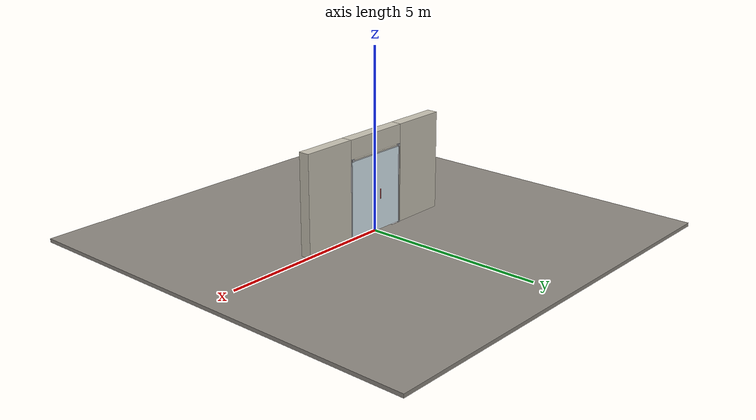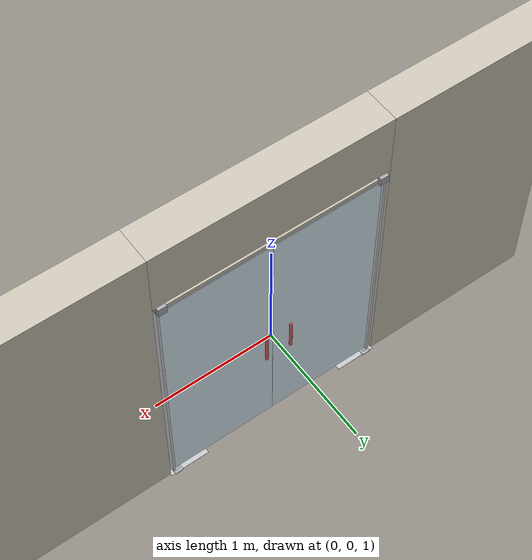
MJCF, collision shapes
<?xml version="1.0" ?>
<mujoco model="db0197_swing_double_full">
  <compiler angle="radian" meshdir="../../hardware" texturedir="../../textures" autolimits="true" inertiafromgeom="false"/>
  <option timestep="0.002" integrator="implicitfast" cone="elliptic" impratio="10" noslip_iterations="3">
    <flag multiccd="enable"/>
  </option>
  <size memory="16M"/>
  <default>
    <geom condim="4" solref="0.005 1" solimp="0.95 0.99 0.001"/>
    <joint solreflimit="0.005 1" solimplimit="0.95 0.99 0.001"/>
    <tendon solreflimit="0.005 1"/>
    <equality solref="0.002 1"/>
  </default>
  <visual>
    <headlight ambient="0.4 0.4 0.4" diffuse="0.7 0.7 0.7" specular="0.2 0.2 0.2"/>
    <quality shadowsize="4096"/>
    <map znear="0.01" zfar="60"/>
  </visual>
  <asset>
    <mesh name="pull_f8d79d6331" file="pull_f8d79d6331.obj"/>
    <material name="mat_floor" rgba="0.55 0.53 0.5 1" specular="0.2" shininess="0.15" reflectance="0"/>
    <material name="mat_wall" rgba="0.78 0.76 0.7 1" specular="0.2" shininess="0.1" reflectance="0"/>
    <material name="mat_leaf_a" rgba="0.85 0.92 0.95 0.25" specular="0.2" shininess="0.95" reflectance="0.1"/>
    <material name="mat_glass_leaf" rgba="0.85 0.92 0.95 0.25" specular="0.2" shininess="0.95" reflectance="0.1"/>
    <material name="mat_patch" rgba="0.75 0.76 0.77 1" specular="0.8" shininess="0.65" reflectance="0.4"/>
    <material name="mat_hinge" rgba="0.65 0.66 0.68 1" specular="0.74" shininess="0.5" reflectance="0.36"/>
    <material name="mat_op_stainless" rgba="0.75 0.76 0.77 1" specular="0.8" shininess="0.65" reflectance="0.4"/>
    <material name="mat_closer" rgba="0.75 0.76 0.77 1" specular="0.8" shininess="0.65" reflectance="0.4"/>
    <material name="mat_leaf_b" rgba="0.85 0.92 0.95 0.25" specular="0.2" shininess="0.95" reflectance="0.1"/>
    <material name="mat_frame" rgba="0.8 0.81 0.83 1" specular="0.8" shininess="0.6" reflectance="0.4"/>
    <texture name="skybox" type="skybox" builtin="gradient" rgb1="0.6 0.7 0.85" rgb2="0.9 0.92 0.95" width="256" height="256"/>
  </asset>
  <worldbody>
    <light name="sun" pos="1.5 -2.5 4" dir="-0.3 0.5 -0.8" directional="true" diffuse="0.8 0.8 0.8" specular="0.3 0.3 0.3" castshadow="true"/>
    <light name="fill" pos="-1.5 2.5 3" dir="0.3 -0.5 -0.7" directional="true" diffuse="0.35 0.35 0.4" castshadow="false"/>
    <camera name="robot_view" pos="0 -2.745312 1.812087" xyaxes="1 0 0 0 0.26963 0.962964" fovy="52"/>
    <camera name="far_view" pos="0 2.530312 1.812087" xyaxes="-1 0 0 0 -0.26963 0.962964" fovy="52"/>
    <camera name="iso" pos="-2.004737 -2.323262 2.234138" xyaxes="0.741536 -0.670913 0 0.242917 0.268487 0.932151" fovy="46"/>
    <camera name="detail_handle" pos="0.0735 -0.8975 1.32" xyaxes="0.97561 0.219512 0 -0.070934 0.315262 0.94635" fovy="38"/>
    <geom name="floor" type="box" size="6 6 0.05" pos="0 0 -0.05" material="mat_floor" group="0" contype="1" conaffinity="1" friction="0.8 0.005 0.0001" density="2400"/>
    <geom name="wall_left" type="box" size="0.76825 0.15 1.3735" pos="-1.73175 -0.1075 1.3735" material="mat_wall" group="0" contype="1" conaffinity="1" friction="0.6 0.005 0.0001" density="800"/>
    <geom name="wall_right" type="box" size="0.76825 0.15 1.3735" pos="1.73175 -0.1075 1.3735" material="mat_wall" group="0" contype="1" conaffinity="1" friction="0.6 0.005 0.0001" density="800"/>
    <geom name="wall_header" type="box" size="0.9635 0.15 0.2625" pos="0 -0.1075 2.4845" material="mat_wall" group="0" contype="1" conaffinity="1" friction="0.6 0.005 0.0001" density="800"/>
    <geom name="pivot_bottom_socket" type="box" size="0.035 0.035 0.0085" pos="-0.8995 0.0325 -0.0015" material="mat_hinge" group="1" contype="0" conaffinity="0" density="7850"/>
    <geom name="pivot_top_bracket" type="box" size="0.035 0.035 0.0355" pos="-0.8995 0.0325 2.1865" material="mat_hinge" group="1" contype="0" conaffinity="0" density="7850"/>
    <geom name="floor_spring_cover" type="box" size="0.17 0.06 0.002" pos="-0.7985 0 0.002" material="mat_closer" group="1" contype="0" conaffinity="0" density="7900"/>
    <geom name="pivot_bottom_socket_2" type="box" size="0.035 0.035 0.0085" pos="0.8995 0.0325 -0.0015" material="mat_hinge" group="1" contype="0" conaffinity="0" density="7850"/>
    <geom name="pivot_top_bracket_2" type="box" size="0.035 0.035 0.0355" pos="0.8995 0.0325 2.1865" material="mat_hinge" group="1" contype="0" conaffinity="0" density="7850"/>
    <geom name="floor_spring_cover_2" type="box" size="0.17 0.06 0.002" pos="0.7985 0 0.002" material="mat_closer" group="1" contype="0" conaffinity="0" density="7900"/>
    <geom name="jamb_l" type="box" size="0.0095 0.15 1.0735" pos="-0.928 -0.1075 1.0735" material="mat_frame" group="0" contype="1" conaffinity="1" friction="0.6 0.005 0.0001" density="300"/>
    <geom name="jamb_r" type="box" size="0.0095 0.15 1.0735" pos="0.928 -0.1075 1.0735" material="mat_frame" group="0" contype="1" conaffinity="1" friction="0.6 0.005 0.0001" density="300"/>
    <geom name="jamb_head" type="box" size="0.9375 0.15 0.0095" pos="0 -0.1075 2.1565" material="mat_frame" group="0" contype="1" conaffinity="1" friction="0.6 0.005 0.0001" density="300"/>
    <geom name="head_stud" type="box" size="0.9375 0.15 0.015" pos="0 -0.1075 2.181" material="mat_wall" group="0" contype="1" conaffinity="1" friction="0.6 0.005 0.0001" density="500"/>
    <site name="approach_point" pos="0 -1.5 0" quat="1 0 0 0" size="0.05" rgba="0.2 0.9 0.2 0.5" group="4"/>
    <site name="goal_point" pos="0 1.5 0" quat="1 0 0 0" size="0.05" rgba="0.2 0.9 0.2 0.5" group="4"/>
    <site name="door_plane_center" pos="0 0 1.0735" quat="1 0 0 0" size="0.02" rgba="0.2 0.9 0.2 0.5" group="4"/>
    <site name="approach_point_2" pos="0 -1.5 0" quat="1 0 0 0" size="0.05" rgba="0.2 0.9 0.2 0.5" group="4"/>
    <site name="goal_point_2" pos="0 1.5 0" quat="1 0 0 0" size="0.05" rgba="0.2 0.9 0.2 0.5" group="4"/>
    <site name="door_plane_center_2" pos="0 0 1.0735" quat="1 0 0 0" size="0.02" rgba="0.2 0.9 0.2 0.5" group="4"/>
    <site name="approach_point_3" pos="0 -1.5 0" quat="1 0 0 0" size="0.05" rgba="0.2 0.9 0.2 0.5" group="4"/>
    <site name="goal_point_3" pos="0 1.5 0" quat="1 0 0 0" size="0.05" rgba="0.2 0.9 0.2 0.5" group="4"/>
    <site name="door_plane_center_3" pos="0 0 1.0735" quat="1 0 0 0" size="0.02" rgba="0.2 0.9 0.2 0.5" group="4"/>
    <body name="leaf_a" pos="-0.9185 0 0">
      <inertial pos="0.470149 0.000032 1.074917" mass="96.028242" quat="0.500259 0.500362 0.499638 -0.499741" diaginertia="6.883456068 35.485700662 42.290222917"/>
      <joint name="leaf_a_hinge" type="hinge" axis="0 0 1" pos="0.019 0.0325 0" limited="true" range="0 1.570796" solreflimit="0.02 1" damping="8.268966" frictionloss="1.348387" stiffness="19.23865" springref="-2.096301" armature="0.02"/>
      <geom name="leaf_a_glass" type="box" size="0.457 0.0225 1.067" pos="0.46 0 1.076" material="mat_glass_leaf" group="0" contype="1" conaffinity="1" friction="0.4 0.005 0.0001" density="1"/>
      <geom name="pivot_bottom" type="cylinder" size="0.014 0.004" pos="0.019 0.0325 0.004" material="mat_hinge" group="1" contype="0" conaffinity="0" density="7850"/>
      <geom name="pivot_top" type="cylinder" size="0.014 0.004" pos="0.019 0.0325 2.147" material="mat_hinge" group="1" contype="0" conaffinity="0" density="7850"/>
      <geom name="leaf_a_pull_n" type="mesh" mesh="pull_f8d79d6331" pos="0.812 -0.0225 1.04" quat="0.707107 0.707107 0 0" material="mat_op_stainless" group="1" contype="0" conaffinity="0" density="3000"/>
      <geom name="leaf_a_pull_col_n" type="capsule" size="0.0125 0.13" pos="0.812 -0.0975 1.04" material="mat_op_stainless" group="3" contype="1" conaffinity="1" rgba="0.8 0.3 0.3 0.25" friction="0.7 0.01 0.0001" density="3000"/>
      <geom name="leaf_a_pull_p" type="mesh" mesh="pull_f8d79d6331" pos="0.812 0.0225 1.04" quat="-0.707107 0.707107 0 0" material="mat_op_stainless" group="1" contype="0" conaffinity="0" density="3000"/>
      <geom name="leaf_a_pull_col_p" type="capsule" size="0.0125 0.13" pos="0.812 0.0975 1.04" material="mat_op_stainless" group="3" contype="1" conaffinity="1" rgba="0.8 0.3 0.3 0.25" friction="0.7 0.01 0.0001" density="3000"/>
      <site name="leaf_a_pull_grip_n" pos="0.812 -0.0975 1.04" quat="1 0 0 0" size="0.012" rgba="0.2 0.9 0.2 0.5" group="4"/>
      <site name="leaf_a_pull_grip_p" pos="0.812 0.0975 1.04" quat="1 0 0 0" size="0.012" rgba="0.2 0.9 0.2 0.5" group="4"/>
      <site name="leaf_a_edge_mid" pos="0.917 0 1.067" quat="1 0 0 0" size="0.02" rgba="0.2 0.9 0.2 0.5" group="4"/>
    </body>
    <body name="leaf_b" pos="0.9185 0 0">
      <inertial pos="-0.470149 0.000032 1.074917" mass="96.028242" quat="0.499741 0.499638 0.500362 -0.500259" diaginertia="6.883456068 35.485700662 42.290222917"/>
      <joint name="leaf_b_hinge" type="hinge" axis="0 0 -1" pos="-0.019 0.0325 0" limited="true" range="0 1.570796" solreflimit="0.02 1" damping="8.268966" frictionloss="1.348387" stiffness="19.23865" springref="-2.096301" armature="0.02"/>
      <geom name="leaf_b_glass" type="box" size="0.457 0.0225 1.067" pos="-0.46 0 1.076" material="mat_glass_leaf" group="0" contype="1" conaffinity="1" friction="0.4 0.005 0.0001" density="1"/>
      <geom name="pivot_bottom_2" type="cylinder" size="0.014 0.004" pos="-0.019 0.0325 0.004" material="mat_hinge" group="1" contype="0" conaffinity="0" density="7850"/>
      <geom name="pivot_top_2" type="cylinder" size="0.014 0.004" pos="-0.019 0.0325 2.147" material="mat_hinge" group="1" contype="0" conaffinity="0" density="7850"/>
      <geom name="leaf_b_pull_n" type="mesh" mesh="pull_f8d79d6331" pos="-0.812 -0.0225 1.04" quat="0 0 -0.707107 0.707107" material="mat_op_stainless" group="1" contype="0" conaffinity="0" density="3000"/>
      <geom name="leaf_b_pull_col_n" type="capsule" size="0.0125 0.13" pos="-0.812 -0.0975 1.04" material="mat_op_stainless" group="3" contype="1" conaffinity="1" rgba="0.8 0.3 0.3 0.25" friction="0.7 0.01 0.0001" density="3000"/>
      <geom name="leaf_b_pull_p" type="mesh" mesh="pull_f8d79d6331" pos="-0.812 0.0225 1.04" quat="0 0 0.707107 0.707107" material="mat_op_stainless" group="1" contype="0" conaffinity="0" density="3000"/>
      <geom name="leaf_b_pull_col_p" type="capsule" size="0.0125 0.13" pos="-0.812 0.0975 1.04" material="mat_op_stainless" group="3" contype="1" conaffinity="1" rgba="0.8 0.3 0.3 0.25" friction="0.7 0.01 0.0001" density="3000"/>
      <site name="leaf_b_pull_grip_n" pos="-0.812 -0.0975 1.04" quat="1 0 0 0" size="0.012" rgba="0.2 0.9 0.2 0.5" group="4"/>
      <site name="leaf_b_pull_grip_p" pos="-0.812 0.0975 1.04" quat="1 0 0 0" size="0.012" rgba="0.2 0.9 0.2 0.5" group="4"/>
      <site name="leaf_b_edge_mid" pos="-0.917 0 1.067" quat="1 0 0 0" size="0.02" rgba="0.2 0.9 0.2 0.5" group="4"/>
    </body>
  </worldbody>
  <sensor>
    <jointpos name="leaf_a_hinge_pos" joint="leaf_a_hinge"/>
    <jointvel name="leaf_a_hinge_vel" joint="leaf_a_hinge"/>
    <jointpos name="leaf_b_hinge_pos" joint="leaf_b_hinge"/>
    <jointvel name="leaf_b_hinge_vel" joint="leaf_b_hinge"/>
  </sensor>
</mujoco>
